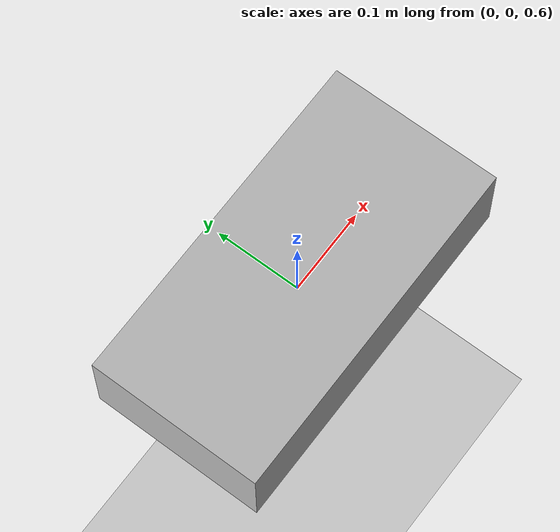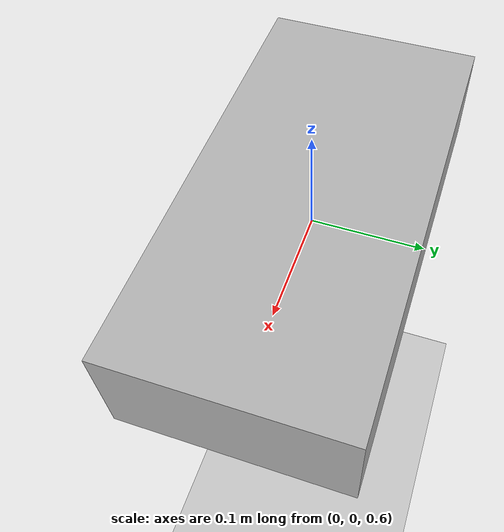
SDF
<?xml version="1.0" ?>
<sdf version="1.9">
  <world name="empty">
    <!-- Пустой мир -->
    <include>
      <uri>model://ground_plane</uri>
    </include>
    <include>
      <uri>model://sun</uri>
    </include>

    <!-- Ваш робот -->
    <include>
      <uri>model://my_robot</uri>  <!-- Если модель зарегистрирована -->
      <!-- ИЛИ прямое включение файла -->
      <name>my_robot</name>
      <pose>0 0 0.5 0 0 0</pose>
    </include>
  </world>
</sdf>

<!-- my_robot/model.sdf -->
<sdf version='1.4'>
      <model name="my_robot">
      <static>true</static>
      <link name='chassis'>
            <pose>0 0 .1 0 0 0</pose>

            <collision name='collision'>
              <geometry>
                <box>
                  <size>.4 .2 .1</size>
                </box>
              </geometry>
            </collision>

            <visual name='visual'>
              <geometry>
                <box>
                  <size>.4 .2 .1</size>
                </box>
              </geometry>
            </visual>
          </link>
          </model>
    </sdf>
